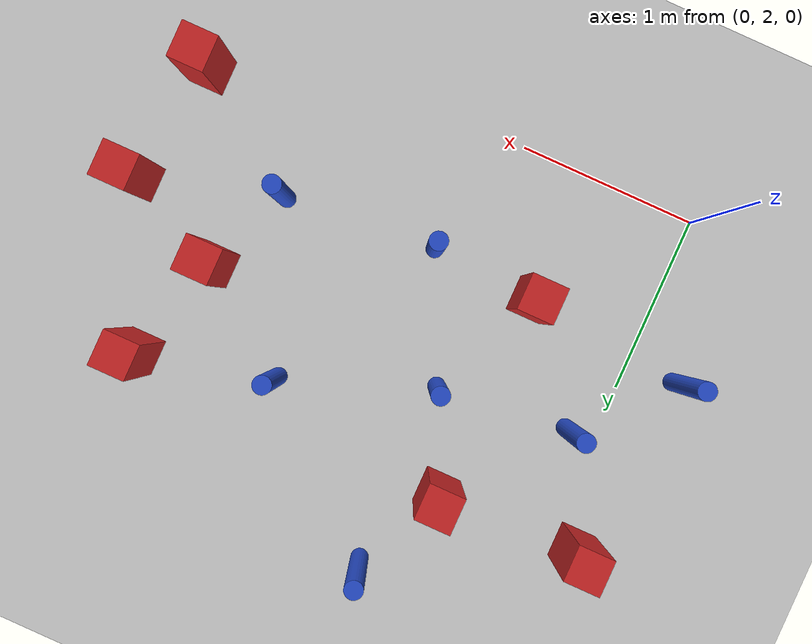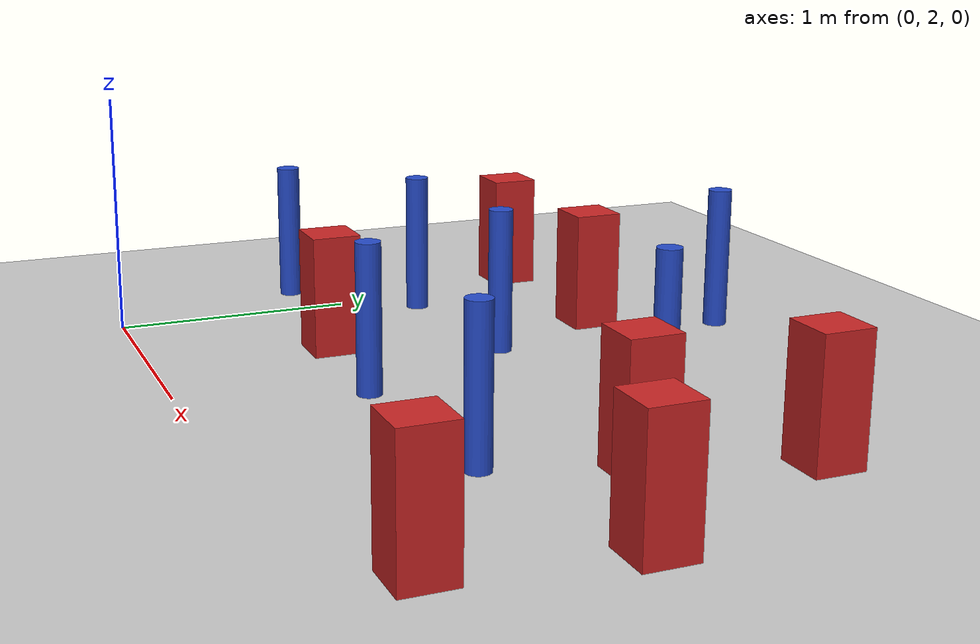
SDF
<sdf version="1.6">
 <world name="default">
  <model name="ground_plane">
   <static>1</static>
   <link name="link">
    <collision name="collision">
     <geometry><plane><normal>0 0 1</normal><size>100 100</size></plane></geometry>
     <surface><friction><ode><mu>100</mu><mu2>50</mu2></ode></friction></surface>
    </collision>
    <visual name="visual">
     <cast_shadows>0</cast_shadows>
     <geometry><plane><normal>0 0 1</normal><size>100 100</size></plane></geometry>
     <material>
      <ambient>1.0 1.0 1.0 1.0</ambient>
      <diffuse>0.8 0.8 0.8 1.0</diffuse>
      <specular>0.01 0.01 0.01 1.000000</specular>
     </material>
    </visual>
   </link>
  </model>
  <model name="square_post_obstacle2">
   <static>true</static>
   <pose>-0.138965825792 3.89410492491 1.91545236811e-07 -7.35059704564e-06 1.12565212e-07 2.39332434364e-05</pose>
   <link name="link">
    <pose>0 0 0.25 0 -0 0</pose>
    <inertial>
     <mass>100</mass>
     <inertia>
      <ixx>0.166667</ixx>
      <ixy>0</ixy>
      <ixz>0</ixz>
      <iyy>0.166667</iyy>
      <iyz>0</iyz>
      <izz>0.166667</izz>
     </inertia>
    </inertial>
    <collision name="collision"><geometry><box><size>.2 .2 .5</size></box></geometry></collision>
    <visual name="visual">
     <geometry><box><size>.2 .2 .5</size></box></geometry>
     <material>
      <script><name>Gazebo/Red</name><uri>file://media/materials/scripts/gazebo.material</uri></script>
     </material>
    </visual>
   </link>
  </model>
  <model name="pole_obstacle36">
   <static>true</static>
   <pose>1.22455151904 2.71217608818 7.38925637345e-09 -8.47170692799e-08 1.24976765053e-08 -1.74513093017e-07</pose>
   <link name="link">
    <pose>0 0 0.3 0 -0 0</pose>
    <inertial>
     <mass>1</mass>
     <inertia><ixx>0.145833</ixx><ixy>0</ixy><ixz>0</ixz><iyy>0.145833</iyy><iyz>0</iyz><izz>0.125</izz></inertia>
    </inertial>
    <collision name="collision">
     <geometry><cylinder><radius>0.05</radius><length>.6</length></cylinder></geometry>
    </collision>
    <visual name="visual">
     <geometry><cylinder><radius>0.05</radius><length>.6</length></cylinder></geometry>
     <material>
      <script><name>Gazebo/Blue</name><uri>file://media/materials/scripts/gazebo.material</uri></script>
     </material>
    </visual>
   </link>
  </model>
  <model name="pole_obstacle55">
   <static>true</static>
   <pose>0.904447537196 3.39687779336 7.38925637345e-09 -8.47170692799e-08 1.2497676509e-08 -1.74513093016e-07</pose>
   <link name="link">
    <pose>0 0 0.3 0 -0 0</pose>
    <inertial>
     <mass>1</mass>
     <inertia><ixx>0.145833</ixx><ixy>0</ixy><ixz>0</ixz><iyy>0.145833</iyy><iyz>0</iyz><izz>0.125</izz></inertia>
    </inertial>
    <collision name="collision">
     <geometry><cylinder><radius>0.05</radius><length>.6</length></cylinder></geometry>
    </collision>
    <visual name="visual">
     <geometry><cylinder><radius>0.05</radius><length>.6</length></cylinder></geometry>
     <material>
      <script><name>Gazebo/Blue</name><uri>file://media/materials/scripts/gazebo.material</uri></script>
     </material>
    </visual>
   </link>
  </model>
  <model name="square_post_obstacle64">
   <static>true</static>
   <pose>2.46749134295 3.88959529614 1.91545236811e-07 -7.35059704564e-06 1.12565212e-07 2.39332434364e-05</pose>
   <link name="link">
    <pose>0 0 0.25 0 -0 0</pose>
    <inertial>
     <mass>100</mass>
     <inertia>
      <ixx>0.166667</ixx>
      <ixy>0</ixy>
      <ixz>0</ixz>
      <iyy>0.166667</iyy>
      <iyz>0</iyz>
      <izz>0.166667</izz>
     </inertia>
    </inertial>
    <collision name="collision"><geometry><box><size>.2 .2 .5</size></box></geometry></collision>
    <visual name="visual">
     <geometry><box><size>.2 .2 .5</size></box></geometry>
     <material>
      <script><name>Gazebo/Red</name><uri>file://media/materials/scripts/gazebo.material</uri></script>
     </material>
    </visual>
   </link>
  </model>
  <model name="pole_obstacle70">
   <static>true</static>
   <pose>0.163192230053 3.31409830576 7.38925637345e-09 -8.47170692792e-08 1.24976764391e-08 -1.74513093041e-07</pose>
   <link name="link">
    <pose>0 0 0.3 0 -0 0</pose>
    <inertial>
     <mass>1</mass>
     <inertia><ixx>0.145833</ixx><ixy>0</ixy><ixz>0</ixz><iyy>0.145833</iyy><iyz>0</iyz><izz>0.125</izz></inertia>
    </inertial>
    <collision name="collision">
     <geometry><cylinder><radius>0.05</radius><length>.6</length></cylinder></geometry>
    </collision>
    <visual name="visual">
     <geometry><cylinder><radius>0.05</radius><length>.6</length></cylinder></geometry>
     <material>
      <script><name>Gazebo/Blue</name><uri>file://media/materials/scripts/gazebo.material</uri></script>
     </material>
    </visual>
   </link>
  </model>
  <model name="pole_obstacle76">
   <static>true</static>
   <pose>2.08085300164 2.79442751341 7.38925637345e-09 -8.47170692798e-08 1.24976764939e-08 -1.74513093025e-07</pose>
   <link name="link">
    <pose>0 0 0.3 0 -0 0</pose>
    <inertial>
     <mass>1</mass>
     <inertia><ixx>0.145833</ixx><ixy>0</ixy><ixz>0</ixz><iyy>0.145833</iyy><iyz>0</iyz><izz>0.125</izz></inertia>
    </inertial>
    <collision name="collision">
     <geometry><cylinder><radius>0.05</radius><length>.6</length></cylinder></geometry>
    </collision>
    <visual name="visual">
     <geometry><cylinder><radius>0.05</radius><length>.6</length></cylinder></geometry>
     <material>
      <script><name>Gazebo/Blue</name><uri>file://media/materials/scripts/gazebo.material</uri></script>
     </material>
    </visual>
   </link>
  </model>
  <model name="pole_obstacle97">
   <static>true</static>
   <pose>0.902263964944 4.43381720186 7.38925637345e-09 -8.471706928e-08 1.24976765086e-08 -1.74513093015e-07</pose>
   <link name="link">
    <pose>0 0 0.3 0 -0 0</pose>
    <inertial>
     <mass>1</mass>
     <inertia><ixx>0.145833</ixx><ixy>0</ixy><ixz>0</ixz><iyy>0.145833</iyy><iyz>0</iyz><izz>0.125</izz></inertia>
    </inertial>
    <collision name="collision">
     <geometry><cylinder><radius>0.05</radius><length>.6</length></cylinder></geometry>
    </collision>
    <visual name="visual">
     <geometry><cylinder><radius>0.05</radius><length>.6</length></cylinder></geometry>
     <material>
      <script><name>Gazebo/Blue</name><uri>file://media/materials/scripts/gazebo.material</uri></script>
     </material>
    </visual>
   </link>
  </model>
  <model name="pole_obstacle106">
   <static>true</static>
   <pose>1.72171827089 3.70765480404 7.38925637345e-09 -8.47170692799e-08 1.24976765053e-08 -1.74513093017e-07</pose>
   <link name="link">
    <pose>0 0 0.3 0 -0 0</pose>
    <inertial>
     <mass>1</mass>
     <inertia><ixx>0.145833</ixx><ixy>0</ixy><ixz>0</ixz><iyy>0.145833</iyy><iyz>0</iyz><izz>0.125</izz></inertia>
    </inertial>
    <collision name="collision">
     <geometry><cylinder><radius>0.05</radius><length>.6</length></cylinder></geometry>
    </collision>
    <visual name="visual">
     <geometry><cylinder><radius>0.05</radius><length>.6</length></cylinder></geometry>
     <material>
      <script><name>Gazebo/Blue</name><uri>file://media/materials/scripts/gazebo.material</uri></script>
     </material>
    </visual>
   </link>
  </model>
  <model name="square_post_obstacle103">
   <static>true</static>
   <pose>2.7443310339 2.32354825051 1.91545236811e-07 -7.35059704564e-06 1.12565212e-07 2.39332434364e-05</pose>
   <link name="link">
    <pose>0 0 0.25 0 -0 0</pose>
    <inertial>
     <mass>100</mass>
     <inertia>
      <ixx>0.166667</ixx>
      <ixy>0</ixy>
      <ixz>0</ixz>
      <iyy>0.166667</iyy>
      <iyz>0</iyz>
      <izz>0.166667</izz>
     </inertia>
    </inertial>
    <collision name="collision"><geometry><box><size>.2 .2 .5</size></box></geometry></collision>
    <visual name="visual">
     <geometry><box><size>.2 .2 .5</size></box></geometry>
     <material>
      <script><name>Gazebo/Red</name><uri>file://media/materials/scripts/gazebo.material</uri></script>
     </material>
    </visual>
   </link>
  </model>
  <model name="pole_obstacle165">
   <static>true</static>
   <pose>-0.270992686049 2.84189945677 7.38925637345e-09 -8.471706928e-08 1.24976765139e-08 -1.74513093014e-07</pose>
   <link name="link">
    <pose>0 0 0.3 0 -0 0</pose>
    <inertial>
     <mass>1</mass>
     <inertia><ixx>0.145833</ixx><ixy>0</ixy><ixz>0</ixz><iyy>0.145833</iyy><iyz>0</iyz><izz>0.125</izz></inertia>
    </inertial>
    <collision name="collision">
     <geometry><cylinder><radius>0.05</radius><length>.6</length></cylinder></geometry>
    </collision>
    <visual name="visual">
     <geometry><cylinder><radius>0.05</radius><length>.6</length></cylinder></geometry>
     <material>
      <script><name>Gazebo/Blue</name><uri>file://media/materials/scripts/gazebo.material</uri></script>
     </material>
    </visual>
   </link>
  </model>
  <model name="square_post_obstacle188">
   <static>true</static>
   <pose>0.630352029219 2.75181247238 1.91545236811e-07 -7.35059704564e-06 1.12565212e-07 2.39332434364e-05</pose>
   <link name="link">
    <pose>0 0 0.25 0 -0 0</pose>
    <inertial>
     <mass>100</mass>
     <inertia>
      <ixx>0.166667</ixx>
      <ixy>0</ixy>
      <ixz>0</ixz>
      <iyy>0.166667</iyy>
      <iyz>0</iyz>
      <izz>0.166667</izz>
     </inertia>
    </inertial>
    <collision name="collision"><geometry><box><size>.2 .2 .5</size></box></geometry></collision>
    <visual name="visual">
     <geometry><box><size>.2 .2 .5</size></box></geometry>
     <material>
      <script><name>Gazebo/Red</name><uri>file://media/materials/scripts/gazebo.material</uri></script>
     </material>
    </visual>
   </link>
  </model>
  <model name="square_post_obstacle191">
   <static>true</static>
   <pose>0.667543835318 3.92040506279 1.91545236811e-07 -7.35059704564e-06 1.12565212e-07 2.39332434364e-05</pose>
   <link name="link">
    <pose>0 0 0.25 0 -0 0</pose>
    <inertial>
     <mass>100</mass>
     <inertia>
      <ixx>0.166667</ixx>
      <ixy>0</ixy>
      <ixz>0</ixz>
      <iyy>0.166667</iyy>
      <iyz>0</iyz>
      <izz>0.166667</izz>
     </inertia>
    </inertial>
    <collision name="collision"><geometry><box><size>.2 .2 .5</size></box></geometry></collision>
    <visual name="visual">
     <geometry><box><size>.2 .2 .5</size></box></geometry>
     <material>
      <script><name>Gazebo/Red</name><uri>file://media/materials/scripts/gazebo.material</uri></script>
     </material>
    </visual>
   </link>
  </model>
  <model name="square_post_obstacle202">
   <static>true</static>
   <pose>2.85928667563 3.02329963935 1.91545236811e-07 -7.35059704564e-06 1.12565212e-07 2.39332434364e-05</pose>
   <link name="link">
    <pose>0 0 0.25 0 -0 0</pose>
    <inertial>
     <mass>100</mass>
     <inertia>
      <ixx>0.166667</ixx>
      <ixy>0</ixy>
      <ixz>0</ixz>
      <iyy>0.166667</iyy>
      <iyz>0</iyz>
      <izz>0.166667</izz>
     </inertia>
    </inertial>
    <collision name="collision"><geometry><box><size>.2 .2 .5</size></box></geometry></collision>
    <visual name="visual">
     <geometry><box><size>.2 .2 .5</size></box></geometry>
     <material>
      <script><name>Gazebo/Red</name><uri>file://media/materials/scripts/gazebo.material</uri></script>
     </material>
    </visual>
   </link>
  </model>
  <model name="square_post_obstacle209">
   <static>true</static>
   <pose>2.28717439233 3.2844136198 1.91545236811e-07 -7.35059704564e-06 1.12565212e-07 2.39332434364e-05</pose>
   <link name="link">
    <pose>0 0 0.25 0 -0 0</pose>
    <inertial>
     <mass>100</mass>
     <inertia>
      <ixx>0.166667</ixx>
      <ixy>0</ixy>
      <ixz>0</ixz>
      <iyy>0.166667</iyy>
      <iyz>0</iyz>
      <izz>0.166667</izz>
     </inertia>
    </inertial>
    <collision name="collision"><geometry><box><size>.2 .2 .5</size></box></geometry></collision>
    <visual name="visual">
     <geometry><box><size>.2 .2 .5</size></box></geometry>
     <material>
      <script><name>Gazebo/Red</name><uri>file://media/materials/scripts/gazebo.material</uri></script>
     </material>
    </visual>
   </link>
  </model>
 </world>
</sdf>
